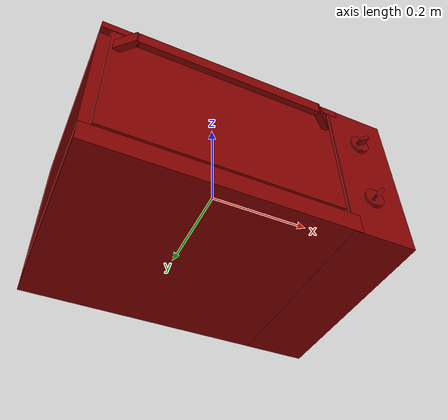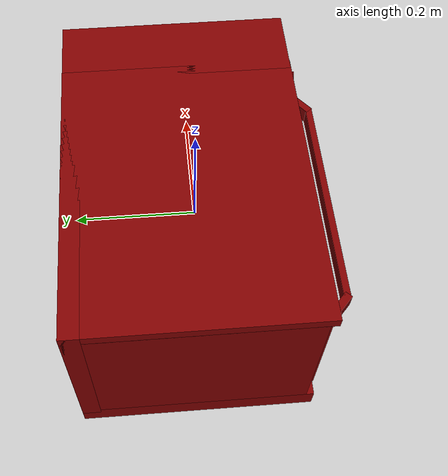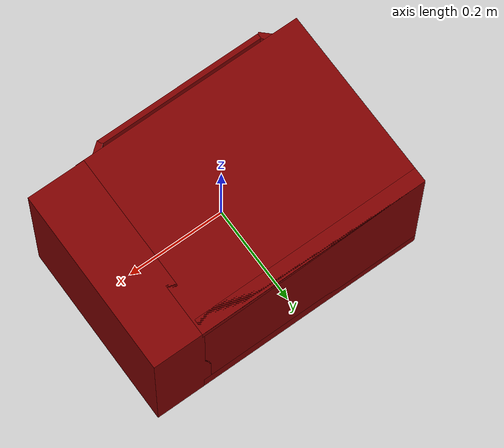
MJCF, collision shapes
<?xml version='1.0' encoding='UTF-8'?>
<mujoco model="model">
  <option timestep="0.002" gravity="0.0 0.0 -9.81"/>
  <compiler angle="radian"/>
  <asset>
    <mesh file="visuals/Body001.obj" name="Body001_vis"/>
    <mesh file="visuals/Container001.obj" name="Container001_vis"/>
    <mesh file="visuals/Door001.obj" name="Door001_vis"/>
    <mesh file="visuals/Door001_Clear.obj" name="Door001_Clear_vis"/>
    <mesh file="visuals/Knob001.obj" name="Knob001_vis"/>
    <mesh file="visuals/Knob002.obj" name="Knob002_vis"/>
    <texture file="visuals/T_BC001.png" name="Body001_material" type="2d"/>
    <material name="Body001_material" rgba="1 1 1 1.0" texture="Body001_material" shininess="1" specular="2"/>
    <texture file="visuals/T_BC001.png" name="Container001_material" type="2d"/>
    <material name="Container001_material" rgba="1 1 1 1.0" texture="Container001_material" shininess="0.141421377658844" specular="3"/>
    <texture file="visuals/T_BC001.png" name="Door001_material" type="2d"/>
    <material name="Door001_material" rgba="1 1 1 1.0" texture="Door001_material" shininess="0.141421377658844" specular="2"/>
    <texture file="visuals/T_BC001.png" name="Door001_Clear_material" type="2d"/>
    <material name="Door001_Clear_material" rgba="1 1 1 0.7896907329559326" texture="Door001_Clear_material" shininess="0.141421377658844" specular="0.3103448502657381"/>
    <texture file="visuals/T_BC001.png" name="Knob001_material" type="2d"/>
    <material name="Knob001_material" rgba="1 1 1 1.0" texture="Knob001_material" shininess="0.141421377658844" specular="0.3103448502657381"/>
    <texture file="visuals/T_BC001.png" name="Knob002_material" type="2d"/>
    <material name="Knob002_material" rgba="1 1 1 1.0" texture="Knob002_material" shininess="0.141421377658844" specular="0.3103448502657381"/>
    <texture file="visuals/T_BC001.png" name="Knob003_material" type="2d"/>
    <material name="Knob003_material" rgba="1 1 1 1.0" texture="Knob003_material" shininess="0.141421377658844" specular="0.3103448502657381"/>
  </asset>
  <default>
    <default class="visual">
      <geom conaffinity="0" contype="0" group="1" type="mesh"/>
    </default>
    <default class="collision">
      <geom group="0" rgba="0.5 0 0 0.5"/>
    </default>
    <default class="spawn">
      <geom group="0" rgba="1 1 1 0.5" contype="0" conaffinity="0"/>
      <site group="0" rgba="1 1 1 0.5"/>
    </default>
    <default class="region">
      <geom group="1" conaffinity="0" contype="0" rgba="0 1 0 0"/>
    </default>
  </default>
  <worldbody>
    <body>
      <body name="object">
        <geom mesh="Body001_vis" type="mesh" solimp="0.998 0.998 0.001" solref="0.001 1" friction="0.95 0.3 0.1" class="visual" material="Body001_material"/>
        <geom class="collision" type="box" pos="-0.2787216007709503 0.020898394286632538 0.011061914265155792" size="0.0100790373980999 0.1818251758813858 0.1327836513519287" quat="1.0 0.0 0.0 0.0"/>
        <geom class="collision" type="box" pos="-0.051112983375787735 0.016075845807790756 -0.14075876772403717" size="0.23768766224384308 0.1894407719373703 0.019266949966549873" quat="1.0 0.0 0.0 0.0"/>
        <geom class="collision" type="box" pos="-0.05295228213071823 0.1906784027814865 0.013824000023305416" size="0.23584838211536407 0.014838216826319695 0.1465122401714325" quat="1.0 0.0 0.0 0.0"/>
        <geom class="collision" type="box" pos="0.22962738573551178 0.016478627920150757 0.00015330803580582142" size="0.05917327105998993 0.1890379786491394 0.16018293797969818" quat="1.0 0.0 0.0 0.0"/>
        <geom class="collision" type="box" pos="-0.050608400255441666 0.016189584508538246 0.1516181081533432" size="0.23819226026535034 0.18932701647281647 0.008718117140233517" quat="1.0 0.0 0.0 0.0"/>
        <geom class="collision" type="box" pos="0.17707152664661407 0.01724364049732685 0.011061914265155792" size="0.009841922670602798 0.18547992408275604 0.1327836513519287" quat="1.0 0.0 0.0 0.0"/>
        <geom class="collision" type="box" pos="0.16500362753868103 0.017019612714648247 -0.0016768682980909944" size="0.007846248336136341 0.12284798175096512 0.012915441766381264" quat="1.0 0.0 0.0 0.0"/>
        <geom class="collision" type="box" pos="0.16500362753868103 0.017019612714648247 -0.041356295347213745" size="0.007846249267458916 0.12284798920154572 0.012915442697703838" quat="1.0 0.0 0.0 0.0"/>
        <geom class="collision" type="box" pos="-0.2658696174621582 0.017019612714648247 -0.041356295347213745" size="0.007846249267458916 0.12284799665212631 0.012915443629026413" quat="1.0 0.0 0.0 0.0"/>
        <geom class="collision" type="box" pos="-0.2658696174621582 0.017019612714648247 -0.0016768682980909944" size="0.00784625019878149 0.12284800410270691 0.012915444560348988" quat="1.0 0.0 0.0 0.0"/>
        <body name="Container001">
          <joint axis="0.0 -1.0 0.0" pos="-0.050781890749931335 0.016669370234012604 -0.025094348937273026" limited="true" name="Container001_joint" range="0.0 0.2" type="slide" damping="1" frictionloss="1" armature=".01" stiffness="0.05"/>
          <geom mesh="Container001_vis" type="mesh" solimp="0.998 0.998 0.001" solref="0.001 1" friction="0.95 0.3 0.1" class="visual" material="Container001_material"/>
          <geom class="collision" type="box" pos="-0.050005953758955 0.016886867582798004 -0.0331217460334301" size="0.18107855319976807 0.12284987419843674 0.0030371074099093676" quat="1.0 0.0 0.0 0.0"/>
          <geom class="collision" type="box" pos="-0.2547823190689087 0.01680660992860794 -0.023407859727740288" size="0.011445212177932262 0.12300089001655579 0.001667578355409205" quat="1.0 0.0 0.0 0.0"/>
          <geom class="collision" type="box" pos="-0.23754730820655823 0.016800038516521454 -0.028198089450597763" size="0.010337631218135357 0.12300733476877213 0.0018848103936761618" quat="0.9440328478813171 -2.0632491271044273e-08 0.3298514783382416 7.2091341785096574e-09"/>
          <geom class="collision" type="box" pos="0.1374489963054657 0.016800038516521454 -0.02819809317588806" size="0.010337631218135357 0.12300733476877213 0.0018848120234906673" quat="7.127249546101666e-08 -0.9440328478813171 -2.4903098250206313e-08 -0.3298514783382416"/>
          <geom class="collision" type="box" pos="0.1530875861644745 0.01680660992860794 -0.023407859727740288" size="0.011445212177932262 0.12300089001655579 0.0016675770748406649" quat="1.0 0.0 0.0 0.0"/>
          <geom class="collision" type="box" pos="-0.23266346752643585 0.01885748654603958 -0.02292959950864315" size="0.01093798503279686 0.10141760855913162 0.001747114583849907" quat="0.834775984287262 4.428879663009866e-08 0.5505897402763367 -1.4126048109019962e-09"/>
          <geom class="collision" type="box" pos="-0.05372815951704979 -0.09470311552286148 -0.022451922297477722" size="0.010395567864179611 0.16322706639766693 0.0013619262026622891" quat="0.5600175857543945 -0.43171757459640503 0.4317167401313782 0.5600186586380005"/>
          <geom class="collision" type="box" pos="0.13254468142986298 0.01885748654603958 -0.02292959950864315" size="0.01093798503279686 0.10141760855913162 0.0017471137689426541" quat="3.0570735276569394e-08 0.834775984287262 7.63536345260718e-09 0.5505897402763367"/>
          <geom class="collision" type="box" pos="-0.05372815951704979 0.13367703557014465 -0.022451922297477722" size="0.010395568795502186 0.16322706639766693 0.0013619264354929328" quat="0.43171948194503784 -0.560015082359314 -0.560021162033081 -0.431714802980423"/>
          <geom class="collision" type="box" pos="-0.22774258255958557 -0.08454250544309616 -0.02292959950864315" size="0.010784467682242393 0.007651630323380232 0.0016384563641622663" quat="0.8021135926246643 -0.15250766277313232 0.529046893119812 0.2312241494655609"/>
          <geom class="collision" type="box" pos="-0.21723870933055878 -0.0917648896574974 -0.022929569706320763" size="0.010521521791815758 0.008782993070781231 0.0014517296804115176" quat="0.7184903621673584 -0.28031352162361145 0.4738919734954834 0.42499685287475586"/>
          <geom class="collision" type="box" pos="-0.24177426099777222 0.01914127916097641 -0.014918849803507328" size="0.005666923243552446 0.10587436705827713 0.0010674488730728626" quat="1.0 0.0 0.0 0.0"/>
          <geom class="collision" type="box" pos="-0.05036699026823044 -0.09831827133893967 -0.014918849803507328" size="0.17736314237117767 0.0026962740812450647 0.0010674601653590798" quat="1.0 0.0 0.0 0.0"/>
          <geom class="collision" type="box" pos="-0.23822082579135895 -0.08850806206464767 -0.014918849803507328" size="0.005287134554237127 0.005399689543992281 0.001067434437572956" quat="0.9630976915359497 -7.488371522867965e-08 -9.148797275315701e-09 0.26915204524993896"/>
          <geom class="collision" type="box" pos="-0.2301773875951767 -0.09419041126966476 -0.014918849803507328" size="0.004604129586368799 0.007284155115485191 0.001067434437572956" quat="0.8660538792610168 -1.892820655768901e-08 -1.0926773263975065e-08 0.49995070695877075"/>
          <geom class="collision" type="box" pos="-0.2301773577928543 0.13204440474510193 -0.014918849803507328" size="0.004604130517691374 0.007284156046807766 0.001067434437572956" quat="4.651262841548487e-08 -0.4999507665634155 -0.8660538196563721 -7.043785643645606e-08"/>
          <geom class="collision" type="box" pos="-0.23822082579135895 0.126362144947052 -0.014918849803507328" size="0.005287135485559702 0.005399688612669706 0.001067434437572956" quat="8.102094284367922e-08 0.26915183663368225 0.9630977511405945 9.41175226643054e-09"/>
          <geom class="collision" type="box" pos="-0.21723876893520355 0.1296190321445465 -0.022929584607481956" size="0.010521523654460907 0.008782991208136082 0.0014517299132421613" quat="0.47389188408851624 -0.4249967336654663 -0.7184905409812927 -0.2803134024143219"/>
          <geom class="collision" type="box" pos="-0.22774255275726318 0.12239668518304825 -0.022929592058062553" size="0.010784467682242393 0.007651598192751408 0.0016384561313316226" quat="0.5290468335151672 -0.23122407495975494 -0.8021136522293091 -0.15250758826732635"/>
          <geom class="collision" type="box" pos="-0.05036698654294014 0.13707685470581055 -0.014918849803507328" size="0.17736314237117767 0.0026962740812450647 0.0010674601653590798" quat="1.0 0.0 0.0 0.0"/>
          <geom class="collision" type="box" pos="0.12716123461723328 0.12239665538072586 -0.022929584607481956" size="0.010784467682242393 0.007651597261428833 0.0016384561313316226" quat="0.23122403025627136 0.529046893119812 0.15250752866268158 -0.8021136522293091"/>
          <geom class="collision" type="box" pos="0.11653608828783035 0.1296190768480301 -0.02292959950864315" size="0.010521524585783482 0.008782991208136082 0.0014517296804115176" quat="0.4249967336654663 0.47389182448387146 0.2803133726119995 -0.7184906005859375"/>
          <geom class="collision" type="box" pos="0.13751821219921112 0.1263621747493744 -0.014918849803507328" size="0.005287153646349907 0.005399688612669706 0.001067434437572956" quat="0.2691517472267151 6.8938295072484834e-09 1.7478615887966953e-08 -0.9630978107452393"/>
          <geom class="collision" type="box" pos="0.12947477400302887 0.13204440474510193 -0.014918849803507328" size="0.004604130983352661 0.007284156512469053 0.001067434437572956" quat="0.49995073676109314 1.88726119176863e-08 -3.26926254956561e-08 -0.8660538196563721"/>
          <geom class="collision" type="box" pos="0.1300092339515686 -0.09419038146734238 -0.014918849803507328" size="0.004604129586368799 0.007284155115485191 0.001067434437572956" quat="6.538524388588485e-08 -0.8660538792610168 0.49995070695877075 -3.7745238046227314e-08"/>
          <geom class="collision" type="box" pos="0.13805271685123444 -0.08850806206464767 -0.014918849803507328" size="0.005287156440317631 0.005399690475314856 0.001067434437572956" quat="7.576508664897119e-08 -0.9630977511405945 0.26915186643600464 -9.395116684629556e-09"/>
          <geom class="collision" type="box" pos="0.11653616279363632 -0.09176494926214218 -0.022929614409804344" size="0.010521521791815758 0.008782990276813507 0.001451730029657483" quat="0.2803131937980652 0.718490719795227 -0.4249964952468872 0.473891943693161"/>
          <geom class="collision" type="box" pos="0.12703993916511536 -0.08454247564077377 -0.022929584607481956" size="0.010784467682242393 0.007651598658412695 0.001638456480577588" quat="0.15250754356384277 0.8021135926246643 -0.23122411966323853 0.5290469527244568"/>
          <geom class="collision" type="box" pos="0.1413470059633255 0.01914127916097641 -0.014918849803507328" size="0.00566692091524601 0.10587436705827713 0.0010674488730728626" quat="1.0 0.0 0.0 0.0"/>
        </body>
        <body name="Door001">
          <joint axis="1.0 0.0 0.0" pos="-0.05226399749517441 -0.17201784253120422 -0.12065739184617996" limited="true" name="Door001_joint" range="0.0 1.5707963267948966" type="hinge" damping="1" frictionloss="1" armature=".01" stiffness="1" springref="-0.5"/>
          <geom mesh="Door001_vis" type="mesh" solimp="0.998 0.998 0.001" solref="0.001 1" friction="0.95 0.3 0.1" class="visual" material="Door001_material"/>
          <geom class="collision" type="box" pos="-0.05354137718677521 -0.16985151171684265 0.011061866767704487" size="0.21546970307826996 0.004284655209630728 0.12861064076423645" quat="1.0 0.0 0.0 0.0"/>
          <geom class="collision" type="box" pos="0.13583426177501678 -0.1875154674053192 0.09745806455612183" size="0.02236883156001568 0.005955244414508343 0.013131000101566315" quat="1.838978676005354e-07 0.9444842338562012 0.32855677604675293 6.397237228839003e-08"/>
          <geom class="collision" type="box" pos="-0.05373682081699371 -0.20033195614814758 0.09745806455612183" size="0.17412713170051575 0.005172303412109613 0.01313098892569542" quat="1.0 0.0 0.0 0.0"/>
          <geom class="collision" type="box" pos="-0.24278214573860168 -0.18763667345046997 0.09745806455612183" size="0.02236883156001568 0.005955244414508343 0.013131000101566315" quat="0.9295087456703186 0.0 -0.0 -0.3688000738620758"/>
          <body name="Door001_Clear">
            <geom mesh="Door001_Clear_vis" type="mesh" solimp="0.998 0.998 0.001" solref="0.001 1" friction="0.95 0.3 0.1" class="visual" material="Door001_Clear_material"/>
            <geom class="collision" type="box" pos="-0.053802330046892166 -0.17216873168945312 0.01578720286488533" size="0.17661574482917786 0.0015890538925305009 0.08660926669836044" quat="1.0 0.0 0.0 0.0"/>
          </body>
        </body>
        <body name="Knob001">
          <joint axis="0.0 1.0 0.0" pos="0.22374679148197174 -0.18384221196174622 0.07452467828989029" limited="true" name="Knob001_joint" range="0.0 4.4505895925855405" type="hinge" damping="0.05" armature="0.001"/>
          <geom mesh="Knob001_vis" type="mesh" solimp="0.998 0.998 0.001" solref="0.001 1" friction="0.95 0.3 0.1" class="visual" material="Knob001_material"/>
          <geom class="collision" type="cylinder" pos="0.22344104945659637 -0.17624247074127197 0.07411835342645645" size="0.019237585365772247 0.0033157120924443007" quat="0.7071068286895752 0.7071067690849304 0.0 0.0"/>
          <geom class="collision" type="box" pos="0.22344104945659637 -0.1871654987335205 0.07411835342645645" size="0.013307574205100536 0.007814652286469936 0.0034941365011036396" quat="0.9453607797622681 8.024624441466935e-16 -0.32602614164352417 1.1159400514770823e-08"/>
        </body>
        <body name="Knob002">
          <joint axis="0.0 1.0 0.0" pos="0.2250300943851471 -0.18384221196174622 -0.06915003061294556" limited="true" name="Knob002_joint" range="0.0 5.585053606381854" type="hinge" damping="0.05" armature="0.001"/>
          <geom mesh="Knob002_vis" type="mesh" solimp="0.998 0.998 0.001" solref="0.001 1" friction="0.95 0.3 0.1" class="visual" material="Knob002_material"/>
          <geom class="collision" type="cylinder" pos="0.22440283000469208 -0.17624247074127197 -0.0685025304555893" size="0.019237585365772247 0.0033157120924443007" quat="0.7071068286895752 0.7071067690849304 0.0 0.0"/>
          <geom class="collision" type="box" pos="0.22452305257320404 -0.1871654987335205 -0.06921768188476562" size="0.013307574205100536 0.007814652286469936 0.0034941367339342833" quat="0.9027822613716125 -1.4188468904955493e-16 -0.43009787797927856 1.4721623919911053e-08"/>
        </body>
        <geom class="region" name="reg_int" type="box" pos="-0.051374539732933044 0.0028888434171676636 0.01067301630973816" size="0.2186041623353958 0.17539305984973907 0.13114464282989502"/>
        <geom class="region" name="reg_main" type="box" pos="0.0 0.015435867011547089 0.0" size="0.2888006567955017 0.19008073210716248 0.1603362262248993"/>
      </body>
    </body>
  </worldbody>
  <actuator>
    <motor name="Container001_joint_actuator" joint="Container001_joint" gear="10"/>
    <motor name="Door001_joint_actuator" joint="Door001_joint" gear="50"/>
    <motor name="Knob001_joint_actuator" joint="Knob001_joint" gear="50"/>
    <motor name="Knob002_joint_actuator" joint="Knob002_joint" gear="50"/>
  </actuator>
</mujoco>
